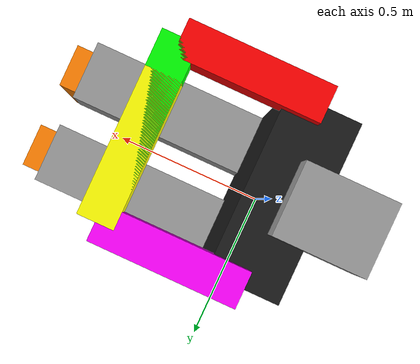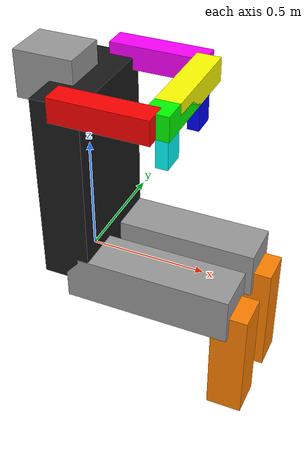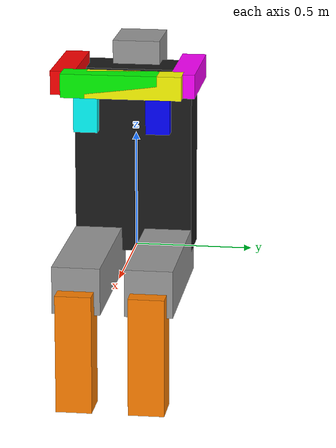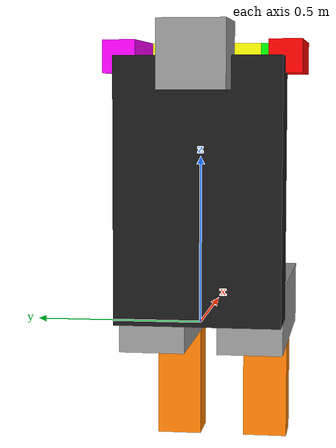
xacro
<?xml version="1.0"?>

<robot name="body_urdf"
  xmlns:xacro="http://ros.org/wiki/xacro">

  <!-- URDF Files -->
  <xacro:include filename="$(find mtig_driver)/urdf/materials.xacro" />
  <xacro:include filename="$(find mtig_driver)/urdf/math_defs.xacro" />
  <xacro:include filename="$(find mtig_driver)/urdf/parameters.xacro" />

  <!-- ROBOT -->
  <xacro:include filename="$(find mtig_driver)/urdf/body_full_fixed_baxter.xacro" />
  <body />

</robot>

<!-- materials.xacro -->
<robot name="materials"
    xmlns:xacro="http://ros.org/wiki/xacro">

    <!-- MATERIALS/COLORS -->
    <material name="Red">
    	<color rgba="1.0 0.0 0.0 1.0"/>
    </material>

    <material name="Green">
    	<color rgba="0.0 1.0 0.0 1.0"/>
    </material>

    <material name="Blue">
    	<color rgba="0.0 0.0 1.0 1.0"/>
    </material>

    <material name="Yellow">
    	<color rgba="1.0 1.0 0.0 1.0"/>
    </material>

    <material name="Cyan">
    	<color rgba="0.0 1.0 1.0 1.0"/>
    </material>

    <material name="Magenta">
    	<color rgba="1.0 0.0 1.0 1.0"/>
    </material>

    <material name="Orange">
    	<color rgba="1.0 0.5 0.0 1.0"/>
    </material>

    <material name="White">
    	<color rgba="1.0 1.0 1.0 1.0"/>
    </material>

    <material name="Silver">
    	<color rgba="0.9 0.9 0.9 1.0"/>
    </material>

    <material name="Gray">
    	<color rgba="0.6 0.6 0.6 1.0"/>
    </material>

    <material name="Grey">
    	<color rgba="0.3 0.3 0.3 1.0"/>
    </material>

    <material name="Black">
    	<color rgba="0.1 0.1 0.1 1.0"/>
    </material>

    <material name="Wood">
	<texture filename="package://multirotor_simulator/media/materials/textures/OLDWOOD.JPG"/>
    </material>

    <material name="Aluminum">
        <texture filename="package://multirotor_simulator/media/materials/textures/Simple_Metal_Mtl_Brush_pattern.jpg" />
    </material>

    <material name="Metal">
        <texture filename="package://multirotor_simulator/media/materials/textures/Concrete_Cast_In_Place_Flat_Grey_1.jpg" />
    </material>

</robot>

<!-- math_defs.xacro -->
<robot name="math_defs"
    xmlns:xacro="http://ros.org/wiki/xacro">

    <!-- MATHEMATIC DEFINITIONS -->
    <xacro:property name="M_PI" value="3.141592654"/>
    <xacro:property name="M_PI_2" value="1.570796327"/>
    <xacro:property name="M_PI_3" value="1.047197551"/>
    <xacro:property name="M_PI_4" value="0.785398163"/>
    <xacro:property name="M_PI_6" value="0.523598776"/>
    <xacro:property name="COS_M_PI" value="-1.0"/>
    <xacro:property name="COS_M_PI_2" value="0.0"/>
    <xacro:property name="COS_M_PI_3" value="0.5"/>
    <xacro:property name="COS_M_PI_4" value="0.707106781"/>
    <xacro:property name="COS_M_PI_6" value="0.866025404"/>
    <xacro:property name="COS_0" value="1.0"/>
    <xacro:property name="SIN_M_PI" value="0.0"/>
    <xacro:property name="SIN_M_PI_2" value="1.0"/>
    <xacro:property name="SIN_M_PI_3" value="0.866025404"/>
    <xacro:property name="SIN_M_PI_4" value="0.707106781"/>
    <xacro:property name="SIN_M_PI_6" value="0.5"/>
    <xacro:property name="SIN_0" value="0.0"/>

</robot>

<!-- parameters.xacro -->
<robot name="parameters"
  xmlns:xacro="http://ros.org/wiki/xacro">

  <!-- MODEL PARAMETERS -->

  <!-- Cuerpo -->
  <xacro:property name="E_wide" value="0.5" />
  <xacro:property name="E_height" value="0.8" />
  <xacro:property name="E_depth" value="0.2" />

  <!-- Cabeza -->
  <xacro:property name="C_wide" value="0.2" />
  <xacro:property name="C_height" value="0.25" />
  <xacro:property name="C_depth" value="0.2" />

  <!-- Hombro -->
  <xacro:property name="H_wide" value="0.2" />
  <xacro:property name="H_height" value="0.1" />
  <xacro:property name="H_depth" value="0.05" />

  <!-- Brazo -->
  <xacro:property name="B_side" value="0.1" />
  <xacro:property name="B_length" value="0.4" />

  <!-- Ante-Brazo -->
  <xacro:property name="A_side" value="0.1" />
  <xacro:property name="A_length" value="0.3" />

  <!-- Mano -->
  <xacro:property name="M_wide" value="0.1" />
  <xacro:property name="M_height" value="0.2" />
  <xacro:property name="M_depth" value="0.05" />

  <!-- Pierna -->
  <xacro:property name="P_side" value="0.2" />
  <xacro:property name="P_length" value="0.7" />

  <!-- Gemelo -->
  <xacro:property name="G_side" value="0.15" />
  <xacro:property name="G_length" value="0.5" />

  <!-- Zapato -->
  <xacro:property name="Z_wide" value="0.1" />
  <xacro:property name="Z_height" value="0.3" />
  <xacro:property name="Z_depth" value="0.08" />

</robot>

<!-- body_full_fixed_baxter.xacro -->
<robot name="body"
  xmlns:xacro="http://ros.org/wiki/xacro"
  xmlns:gazebo="http://playerstage.sourceforge.net/gazebo/xmlschema/#gz"
  xmlns:model="http://playerstage.sourceforge.net/gazebo/xmlschema/#model"
  xmlns:sensor="http://playerstage.sourceforge.net/gazebo/xmlschema/#sensor"
  xmlns:body="http://playerstage.sourceforge.net/gazebo/xmlschema/#body"
  xmlns:geom="http://playerstage.sourceforge.net/gazebo/xmlschema/#geom"
  xmlns:joint="http://playerstage.sourceforge.net/gazebo/xmlschema/#joint"
  xmlns:controller="http://playerstage.sourceforge.net/gazebo/xmlschema/#controller"
  xmlns:interface="http://playerstage.sourceforge.net/gazebo/xmlschema/#interface"
  xmlns:rendering="http://playerstage.sourceforge.net/gazebo/xmlschema/#rendering"
  xmlns:physics="http://playerstage.sourceforge.net/gazebo/xmlschema/#physics">

<!--
  ### KINEMATIC MODEL ###
  The kinematic model consists of a complete body.
-->
  <xacro:macro name="body">

    <!-- World body -->
    <link name="world"/>

    <!-- torso link -->
    <joint name="torso_joint" type="continuous">
        <origin xyz="0 0 0" rpy="0 ${-M_PI_2} 0" />
        <parent link="world"/>
        <child link="torso" />
		<axis xyz="0 0 1" />
    </joint>

    <link name="torso">
        <inertial>
            <mass value="1" />
            <origin xyz="0 0 0" />
            <inertia  ixx="1.0" ixy="0.0"  ixz="0.0"  iyy="1.0"  iyz="0.0"  izz="1.0" />
        </inertial>
        <visual>
            <origin xyz="${E_height*0.5} 0 0" rpy="0 0 0"/>
            <geometry>
                <box size="${E_height} ${E_wide} ${E_depth}"/>
            </geometry>
           <material name="Black"/>
        </visual>
    </link>

    <!-- head link -->
    <joint name="head_joint" type="continuous">
        <origin xyz="${E_height} 0 0" rpy="0 ${-M_PI_2} 0" />
        <parent link="torso"/>
        <child link="head" />
		<axis xyz="0 0 1" />
    </joint>

    <link name="head">
        <inertial>
            <mass value="1" />
            <origin xyz="0 0 0" />
            <inertia  ixx="1.0" ixy="0.0"  ixz="0.0"  iyy="1.0"  iyz="0.0"  izz="1.0" />
        </inertial>
        <visual>
            <origin xyz="${C_height*0.5} 0 0" rpy="0 0 0"/>
            <geometry>
                <box size="${C_height} ${C_wide} ${C_depth}"/>
            </geometry>
           <material name="Gray"/>
        </visual>
    </link>

    <!-- left_arm_mount link -->

    <!-- left_lower_shoulder link -->
    <joint name="left_lower_shoulder_joint" type="continuous">
        <origin xyz="${E_height} ${E_wide*0.5} 0" rpy="${-M_PI_2} ${-M_PI_2} 0" />
        <parent link="torso"/>
        <child link="left_lower_shoulder" />
		<axis xyz="0 0 1" />
    </joint>

    <link name="left_lower_shoulder">
        <inertial>
            <mass value="1" />
            <origin xyz="0 0 0" />
            <inertia  ixx="1.0" ixy="0.0"  ixz="0.0"  iyy="1.0"  iyz="0.0"  izz="1.0" />
        </inertial>
        <visual>
            <origin xyz="${-B_length*0.5} 0 0" rpy="0 0 0"/>
            <geometry>
                <box size="${B_length} ${B_side} ${B_side}"/>
            </geometry>
           <material name="Magenta"/>
        </visual>
    </link>

    <!-- left_lower_elbow link -->
    <joint name="left_lower_elbow_joint" type="continuous">
        <origin xyz="${-B_length} 0 0" rpy="0 ${-M_PI_2} ${-M_PI_2}" />
        <parent link="left_lower_shoulder"/>
        <child link="left_lower_elbow" />
		<axis xyz="0 0 1" />
    </joint>

    <link name="left_lower_elbow">
        <inertial>
            <mass value="1" />
            <origin xyz="0 0 0" />
            <inertia  ixx="1.0" ixy="0.0"  ixz="0.0"  iyy="1.0"  iyz="0.0"  izz="1.0" />
        </inertial>
        <visual>
            <origin xyz="${-B_length*0.5} 0 0" rpy="0 0 0"/>
            <geometry>
                <box size="${B_length} ${B_side} ${B_side}"/>
            </geometry>
           <material name="Yellow"/>
        </visual>
    </link>

    <!-- left_lower_forearm link -->
    <joint name="left_lower_forearm_joint" type="continuous">
        <origin xyz="${-B_length} 0 0" rpy="0 ${-M_PI_2} ${-M_PI_2}" />
        <parent link="left_lower_elbow"/>
        <child link="left_lower_forearm" />
		<axis xyz="0 0 1" />
    </joint>

    <link name="left_lower_forearm">
        <inertial>
            <mass value="1" />
            <origin xyz="0 0 0" />
            <inertia  ixx="1.0" ixy="0.0"  ixz="0.0"  iyy="1.0"  iyz="0.0"  izz="1.0" />
        </inertial>
        <visual>
            <origin xyz="${-M_height*0.5} 0 0" rpy="0 0 0"/>
            <geometry>
                <box size="${M_height} ${M_wide} ${M_depth}"/>
            </geometry>
           <material name="Cyan"/>
        </visual>
    </link>

    <!-- right_arm_mount link -->

    <!-- right_lower_shoulder link -->
    <joint name="right_lower_shoulder_joint" type="continuous">
        <origin xyz="${E_height} ${-E_wide*0.5} 0" rpy="${M_PI_2} ${-M_PI_2} 0" />
        <parent link="torso"/>
        <child link="right_lower_shoulder" />
		<axis xyz="0 0 1" />
    </joint>

    <link name="right_lower_shoulder">
        <inertial>
            <mass value="1" />
            <origin xyz="0 0 0" />
            <inertia  ixx="1.0" ixy="0.0"  ixz="0.0"  iyy="1.0"  iyz="0.0"  izz="1.0" />
        </inertial>
        <visual>
            <origin xyz="${-B_length*0.5} 0 0" rpy="0 0 0"/>
            <geometry>
                <box size="${B_length} ${B_side} ${B_side}"/>
            </geometry>
           <material name="Red"/>
        </visual>
    </link>

    <!-- right_lower_elbow link -->
    <joint name="right_lower_elbow_joint" type="continuous">
        <origin xyz="${-B_length} 0 0" rpy="0 ${-M_PI_2} ${M_PI_2}" />
        <parent link="right_lower_shoulder"/>
        <child link="right_lower_elbow" />
		<axis xyz="0 0 1" />
    </joint>

    <link name="right_lower_elbow">
        <inertial>
            <mass value="1" />
            <origin xyz="0 0 0" />
            <inertia  ixx="1.0" ixy="0.0"  ixz="0.0"  iyy="1.0"  iyz="0.0"  izz="1.0" />
        </inertial>
        <visual>
            <origin xyz="${-B_length*0.5} 0 0" rpy="0 0 0"/>
            <geometry>
                <box size="${B_length} ${B_side} ${B_side}"/>
            </geometry>
           <material name="Green"/>
        </visual>
    </link>

    <!-- right_lower_forearm link -->
    <joint name="right_lower_forearm_joint" type="continuous">
        <origin xyz="${-B_length} 0 0" rpy="0 ${-M_PI_2} ${M_PI_2}" />
        <parent link="right_lower_elbow"/>
        <child link="right_lower_forearm" />
		<axis xyz="0 0 1" />
    </joint>

    <link name="right_lower_forearm">
        <inertial>
            <mass value="1" />
            <origin xyz="0 0 0" />
            <inertia  ixx="1.0" ixy="0.0"  ixz="0.0"  iyy="1.0"  iyz="0.0"  izz="1.0" />
        </inertial>
        <visual>
            <origin xyz="${-M_height*0.5} 0 0" rpy="0 0 0"/>
            <geometry>
                <box size="${M_height} ${M_wide} ${M_depth}"/>
            </geometry>
           <material name="Blue"/>
        </visual>
    </link>

    <!-- PI link -->
    <joint name="PI_joint" type="fixed">
        <origin xyz="0 ${E_wide*0.3} 0" rpy="0 0 0" />
        <parent link="torso"/>
        <child link="PI" />
    </joint>

    <link name="PI">
        <inertial>
            <mass value="1" />
            <origin xyz="0 0 0" />
            <inertia  ixx="1.0" ixy="0.0"  ixz="0.0"  iyy="1.0"  iyz="0.0"  izz="1.0" />
        </inertial>
        <visual>
            <origin xyz="0 0 ${-P_length*0.5}" rpy="0 0 0"/>
            <geometry>
                <box size="${P_side} ${P_side} ${P_length}"/>
            </geometry>
           <material name="Gray"/>
        </visual>
    </link>

    <!-- PD link -->
    <joint name="PD_joint" type="fixed">
        <origin xyz="0 ${-E_wide*0.3} 0" rpy="0 0 0" />
        <parent link="torso"/>
        <child link="PD" />
    </joint>

    <link name="PD">
        <inertial>
            <mass value="1" />
            <origin xyz="0 0 0" />
            <inertia  ixx="1.0" ixy="0.0"  ixz="0.0"  iyy="1.0"  iyz="0.0"  izz="1.0" />
        </inertial>
        <visual>
            <origin xyz="0 0 ${-P_length*0.5}" rpy="0 0 0"/>
            <geometry>
                <box size="${P_side} ${P_side} ${P_length}"/>
            </geometry>
           <material name="Gray"/>
        </visual>
    </link>

    <!-- GI link -->
    <joint name="GI_joint" type="fixed">
        <origin xyz="0 0 ${-P_length}" rpy="0 0 0"/>
        <parent link="PI"/>
        <child link="GI" />
    </joint>

    <link name="GI">
        <inertial>
            <mass value="1" />
            <origin xyz="0 0 0" />
            <inertia  ixx="1.0" ixy="0.0"  ixz="0.0"  iyy="1.0"  iyz="0.0"  izz="1.0" />
        </inertial>
        <visual>
            <origin xyz="${-G_length*0.5} 0 0" rpy="0 0 0"/>
            <geometry>
                <box size="${G_length} ${G_side} ${G_side}"/>
            </geometry>
           <material name="Orange"/>
        </visual>
    </link>

    <!-- GD link -->
    <joint name="GD_joint" type="fixed">
        <origin xyz="0 0 ${-P_length}" rpy="0 0 0"/>
        <parent link="PD"/>
        <child link="GD" />
    </joint>

    <link name="GD">
        <inertial>
            <mass value="1" />
            <origin xyz="0 0 0" />
            <inertia  ixx="1.0" ixy="0.0"  ixz="0.0"  iyy="1.0"  iyz="0.0"  izz="1.0" />
        </inertial>
        <visual>
            <origin xyz="${-G_length*0.5} 0 0" rpy="0 0 0"/>
            <geometry>
                <box size="${G_length} ${G_side} ${G_side}"/>
            </geometry>
           <material name="Orange"/>
        </visual>
    </link>

    <!-- left_arm_mount link -->
    <joint name="left_arm_mount_joint" type="continuous">
        <origin xyz="${-G_length} ${E_wide*0.3} ${-P_length}" rpy="0 0 ${M_PI_2}" />
        <parent link="torso"/>
        <child link="left_arm_mount" />
		<axis xyz="0 0 1" />
    </joint>

    <link name="left_arm_mount">
        <inertial>
            <mass value="1" />
            <origin xyz="0 0 0" />
            <inertia  ixx="1.0" ixy="0.0"  ixz="0.0"  iyy="1.0"  iyz="0.0"  izz="1.0" />
        </inertial>
        <visual>
            <origin xyz="0 ${-Z_height*0.5} 0" rpy="0 0 0"/>
            <geometry>
                <box size="${Z_wide} ${Z_height} ${Z_depth}"/>
            </geometry>
           <material name="Black"/>
        </visual>
    </link>

    <!-- right_arm_mount link -->
    <joint name="right_arm_mount_joint" type="continuous">
        <origin xyz="${-G_length} ${-E_wide*0.3} ${-P_length}" rpy="0 0 ${M_PI_2}" />
        <parent link="torso"/>
        <child link="right_arm_mount" />
		<axis xyz="0 0 1" />
    </joint>

    <link name="right_arm_mount">
        <inertial>
            <mass value="1" />
            <origin xyz="0 0 0" />
            <inertia  ixx="1.0" ixy="0.0"  ixz="0.0"  iyy="1.0"  iyz="0.0"  izz="1.0" />
        </inertial>
        <visual>
            <origin xyz="0 ${-Z_height*0.5} 0" rpy="0 0 0"/>
            <geometry>
                <box size="${Z_wide} ${Z_height} ${Z_depth}"/>
            </geometry>
           <material name="Black"/>
        </visual>
    </link>

  </xacro:macro>

</robot>
